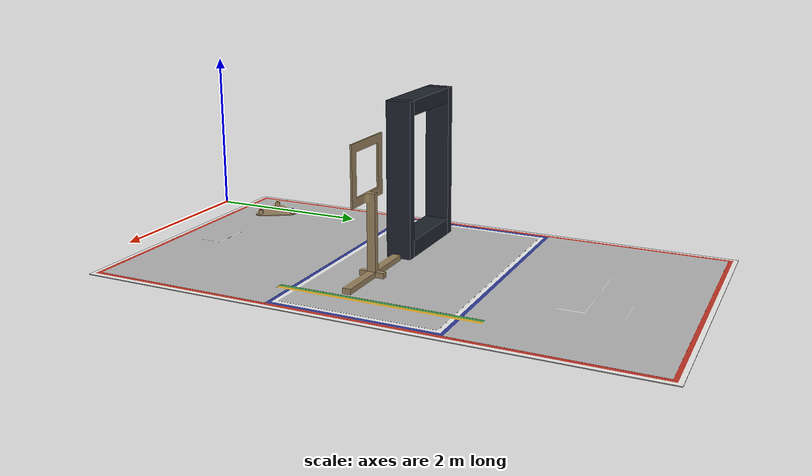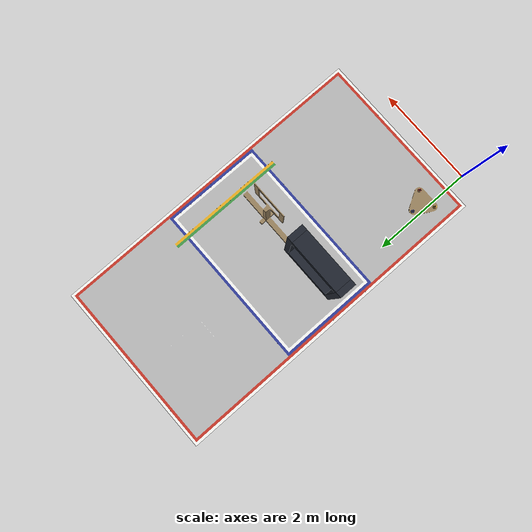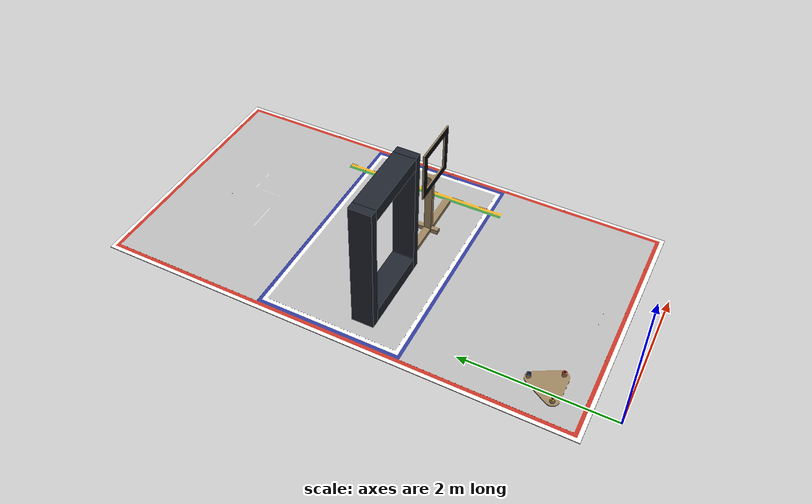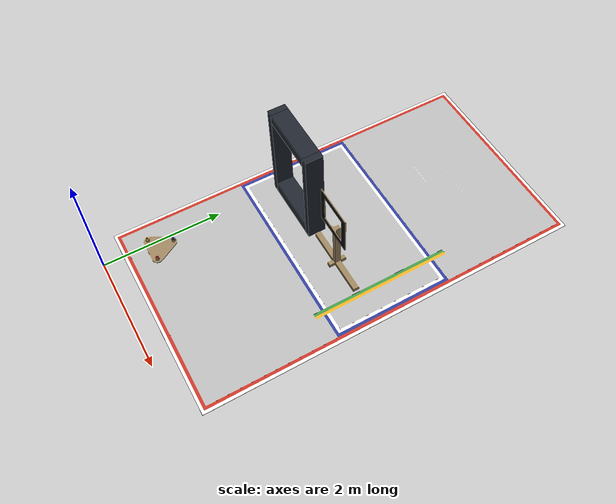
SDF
<?xml version="1.0" encoding="UTF-8"?>
<sdf version="1.9">
  <world name="test_world_gate_wide">
    <physics type="ode">
      <max_step_size>0.004</max_step_size>
      <real_time_factor>1.0</real_time_factor>
      <real_time_update_rate>250</real_time_update_rate>
    </physics>
    <plugin name="gz::sim::systems::Physics" filename="gz-sim-physics-system"/>
    <plugin name="gz::sim::systems::UserCommands" filename="gz-sim-user-commands-system"/>
    <plugin name="gz::sim::systems::SceneBroadcaster" filename="gz-sim-scene-broadcaster-system"/>
    <plugin name="gz::sim::systems::Contact" filename="gz-sim-contact-system"/>
    <plugin name="gz::sim::systems::Imu" filename="gz-sim-imu-system"/>
    <plugin name="gz::sim::systems::AirPressure" filename="gz-sim-air-pressure-system"/>
    <plugin name="gz::sim::systems::ApplyLinkWrench" filename="gz-sim-apply-link-wrench-system"/>
    <plugin name="gz::sim::systems::NavSat" filename="gz-sim-navsat-system"/>
    <plugin name="gz::sim::systems::Sensors" filename="gz-sim-sensors-system">
      <render_engine>ogre2</render_engine>
    </plugin>
    <gui fullscreen="false">
      <!-- 3D scene -->
      <plugin filename="MinimalScene" name="3D View">
        <gz-gui>
          <title>3D View</title>
          <property type="bool" key="showTitleBar">false</property>
          <property type="string" key="state">docked</property>
        </gz-gui>
        <engine>ogre2</engine>
        <scene>scene</scene>
        <ambient_light>0.4 0.4 0.4</ambient_light>
        <background_color>0.8 0.8 0.8</background_color>
        <camera_pose>-6 0 6 0 0.5 0</camera_pose>
        <camera_clip>
          <near>0.25</near>
          <far>25000</far>
        </camera_clip>
      </plugin>
      <!-- Plugins that add functionality to the scene -->
      <plugin filename="EntityContextMenuPlugin" name="Entity context menu">
        <gz-gui>
          <property key="state" type="string">floating</property>
          <property key="width" type="double">5</property>
          <property key="height" type="double">5</property>
          <property key="showTitleBar" type="bool">false</property>
        </gz-gui>
      </plugin>
      <plugin filename="GzSceneManager" name="Scene Manager">
        <gz-gui>
          <property key="resizable" type="bool">false</property>
          <property key="width" type="double">5</property>
          <property key="height" type="double">5</property>
          <property key="state" type="string">floating</property>
          <property key="showTitleBar" type="bool">false</property>
        </gz-gui>
      </plugin>
      <plugin filename="InteractiveViewControl" name="Interactive view control">
        <gz-gui>
          <property key="resizable" type="bool">false</property>
          <property key="width" type="double">5</property>
          <property key="height" type="double">5</property>
          <property key="state" type="string">floating</property>
          <property key="showTitleBar" type="bool">false</property>
        </gz-gui>
      </plugin>
      <plugin filename="CameraTracking" name="Camera Tracking">
        <gz-gui>
          <property key="resizable" type="bool">false</property>
          <property key="width" type="double">5</property>
          <property key="height" type="double">5</property>
          <property key="state" type="string">floating</property>
          <property key="showTitleBar" type="bool">false</property>
        </gz-gui>
      </plugin>
      <plugin filename="MarkerManager" name="Marker manager">
        <gz-gui>
          <property key="resizable" type="bool">false</property>
          <property key="width" type="double">5</property>
          <property key="height" type="double">5</property>
          <property key="state" type="string">floating</property>
          <property key="showTitleBar" type="bool">false</property>
        </gz-gui>
      </plugin>
      <plugin filename="SelectEntities" name="Select Entities">
        <gz-gui>
          <anchors target="Select entities">
            <line own="right" target="right"/>
            <line own="top" target="top"/>
          </anchors>
          <property key="resizable" type="bool">false</property>
          <property key="width" type="double">5</property>
          <property key="height" type="double">5</property>
          <property key="state" type="string">floating</property>
          <property key="showTitleBar" type="bool">false</property>
        </gz-gui>
      </plugin>
      <plugin filename="VisualizationCapabilities" name="Visualization Capabilities">
        <gz-gui>
          <property key="resizable" type="bool">false</property>
          <property key="width" type="double">5</property>
          <property key="height" type="double">5</property>
          <property key="state" type="string">floating</property>
          <property key="showTitleBar" type="bool">false</property>
        </gz-gui>
      </plugin>
      <plugin filename="Spawn" name="Spawn Entities">
        <gz-gui>
          <anchors target="Select entities">
            <line own="right" target="right"/>
            <line own="top" target="top"/>
          </anchors>
          <property key="resizable" type="bool">false</property>
          <property key="width" type="double">5</property>
          <property key="height" type="double">5</property>
          <property key="state" type="string">floating</property>
          <property key="showTitleBar" type="bool">false</property>
        </gz-gui>
      </plugin>
      <plugin name="World control" filename="WorldControl">
        <gz-gui>
          <title>World control</title>
          <property type="bool" key="showTitleBar">0</property>
          <property type="bool" key="resizable">0</property>
          <property type="double" key="height">72</property>
          <property type="double" key="width">121</property>
          <property type="double" key="z">1</property>
          <property type="string" key="state">floating</property>
          <anchors target="3D View">
            <line own="left" target="left"/>
            <line own="bottom" target="bottom"/>
          </anchors>
        </gz-gui>
        <play_pause>1</play_pause>
        <step>1</step>
        <start_paused>1</start_paused>
      </plugin>
      <plugin name="World stats" filename="WorldStats">
        <gz-gui>
          <title>World stats</title>
          <property type="bool" key="showTitleBar">0</property>
          <property type="bool" key="resizable">0</property>
          <property type="double" key="height">110</property>
          <property type="double" key="width">290</property>
          <property type="double" key="z">1</property>
          <property type="string" key="state">floating</property>
          <anchors target="3D View">
            <line own="right" target="right"/>
            <line own="bottom" target="bottom"/>
          </anchors>
        </gz-gui>
        <sim_time>1</sim_time>
        <real_time>1</real_time>
        <real_time_factor>1</real_time_factor>
        <iterations>1</iterations>
      </plugin>
      <plugin name="Entity tree" filename="EntityTree"/>
    </gui>
    <gravity>0 0 -9.8</gravity>
    <magnetic_field>6e-06 2.3e-05 -4.2e-05</magnetic_field>
    <atmosphere type="adiabatic"/>
    <scene>
      <grid>false</grid>
      <ambient>0.4 0.4 0.4 1</ambient>
      <background>0.7 0.7 0.7 1</background>
      <shadows>true</shadows>
    </scene>
    <include>
      <name>test_world_gate_wide</name>
      <uri>model://test_world_gate_wide</uri>
      <pose> 0 0 0 0 0 0 </pose>
    </include>
    <light name="sunUTC" type="directional">
      <pose>0 0 500 0 -0 0</pose>
      <cast_shadows>true</cast_shadows>
      <intensity>1</intensity>
      <direction>0.001 0.625 -0.78</direction>
      <diffuse>0.904 0.904 0.904 1</diffuse>
      <specular>0.271 0.271 0.271 1</specular>
      <attenuation>
        <range>2000</range>
        <linear>0</linear>
        <constant>1</constant>
        <quadratic>0</quadratic>
      </attenuation>
      <spot>
        <inner_angle>0</inner_angle>
        <outer_angle>0</outer_angle>
        <falloff>0</falloff>
      </spot>
    </light>
    <spherical_coordinates>
      <surface_model>EARTH_WGS84</surface_model>
      <world_frame_orientation>ENU</world_frame_orientation>
      <latitude_deg>47.397971057728974</latitude_deg>
      <longitude_deg> 8.546163739800146</longitude_deg>
      <elevation>0</elevation>
    </spherical_coordinates>
  </world>
</sdf>

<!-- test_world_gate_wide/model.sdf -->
<sdf version="1.9">
  <model name="test_world_gate_wide">
    <static>true</static>
    <link name="map">
      <gravity>true</gravity>
      <self_collide>false</self_collide>
      <pose>0 0 0 0 0 0</pose>
      <visual name="terrain_visual">
        <pose>0 0 0 0 0 0</pose>
        <geometry>
          <mesh><uri>model://test_world_gate_wide/meshes/test_terrain_wide_gate.dae</uri></mesh>
        </geometry>
      </visual>
      <collision name="terrain_collision">
        <pose>0 0 0 0 0 0</pose>
        <geometry>
          <mesh><uri>model://test_world_gate_wide/meshes/test_terrain_wide_gate.dae</uri></mesh>
        </geometry>
      </collision>
    </link>

      <link name="wide_gate_left_post">
        <pose>-0.005183 3.227722 0.926481 0 0 0</pose>
        <collision name="collision">
          <geometry><box><size>0.110367 0.300000 1.852962</size></box></geometry>
          <surface>
            <contact><ode><min_depth>0.001</min_depth><max_vel>0</max_vel></ode></contact>
            <friction><ode/></friction>
          </surface>
        </collision>
        <visual name="visual">
          <geometry><box><size>0.110367 0.300000 1.852962</size></box></geometry>
          <material>
            <ambient>0.12 0.14 0.18 1</ambient>
            <diffuse>0.12 0.14 0.18 1</diffuse>
          </material>
        </visual>
      </link>

      <link name="wide_gate_right_post">
        <pose>1.084817 3.227722 0.926481 0 0 0</pose>
        <collision name="collision">
          <geometry><box><size>0.109633 0.300000 1.852962</size></box></geometry>
          <surface>
            <contact><ode><min_depth>0.001</min_depth><max_vel>0</max_vel></ode></contact>
            <friction><ode/></friction>
          </surface>
        </collision>
        <visual name="visual">
          <geometry><box><size>0.109633 0.300000 1.852962</size></box></geometry>
          <material>
            <ambient>0.12 0.14 0.18 1</ambient>
            <diffuse>0.12 0.14 0.18 1</diffuse>
          </material>
        </visual>
      </link>

      <link name="wide_gate_bottom_beam">
        <pose>0.540000 3.227722 0.100000 0 0 0</pose>
        <collision name="collision">
          <geometry><box><size>0.980000 0.300000 0.200000</size></box></geometry>
          <surface>
            <contact><ode><min_depth>0.001</min_depth><max_vel>0</max_vel></ode></contact>
            <friction><ode/></friction>
          </surface>
        </collision>
        <visual name="visual">
          <geometry><box><size>0.980000 0.300000 0.200000</size></box></geometry>
          <material>
            <ambient>0.12 0.14 0.18 1</ambient>
            <diffuse>0.12 0.14 0.18 1</diffuse>
          </material>
        </visual>
      </link>

      <link name="wide_gate_top_beam">
        <pose>0.540000 3.227722 1.766481 0 0 0</pose>
        <collision name="collision">
          <geometry><box><size>0.980000 0.300000 0.172962</size></box></geometry>
          <surface>
            <contact><ode><min_depth>0.001</min_depth><max_vel>0</max_vel></ode></contact>
            <friction><ode/></friction>
          </surface>
        </collision>
        <visual name="visual">
          <geometry><box><size>0.980000 0.300000 0.172962</size></box></geometry>
          <material>
            <ambient>0.12 0.14 0.18 1</ambient>
            <diffuse>0.12 0.14 0.18 1</diffuse>
          </material>
        </visual>
      </link>
  </model>
</sdf>
